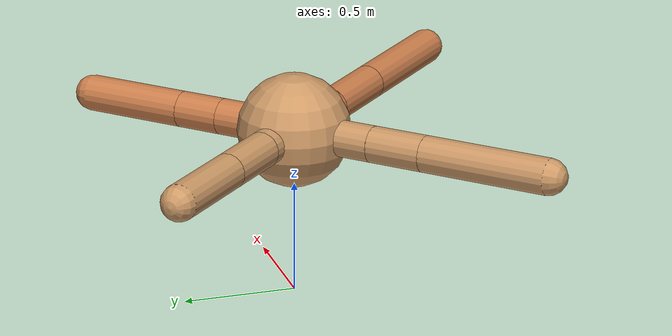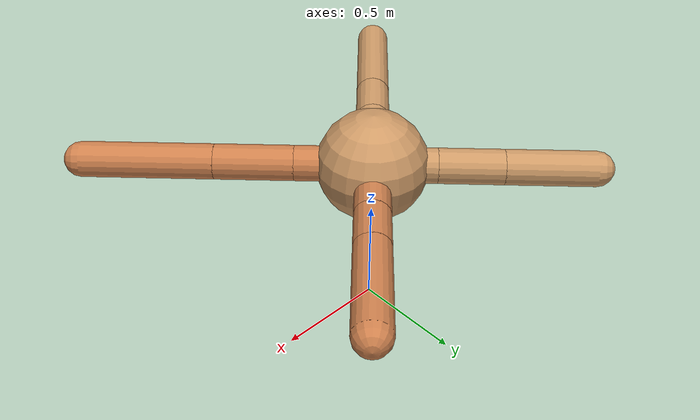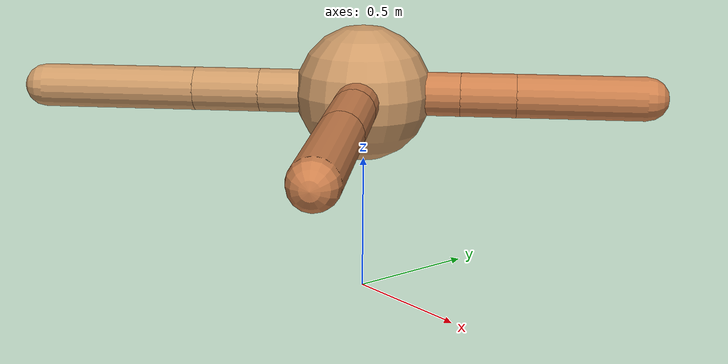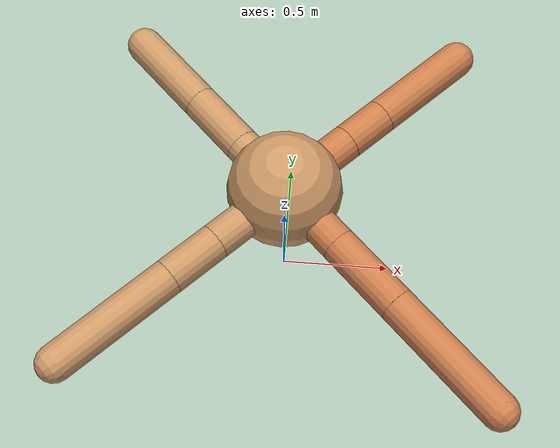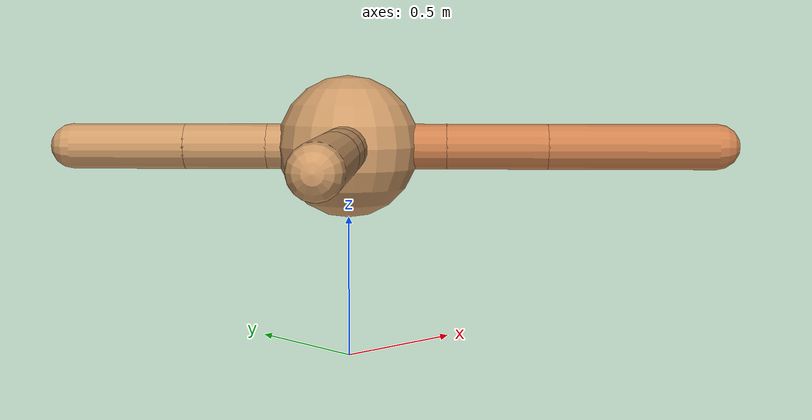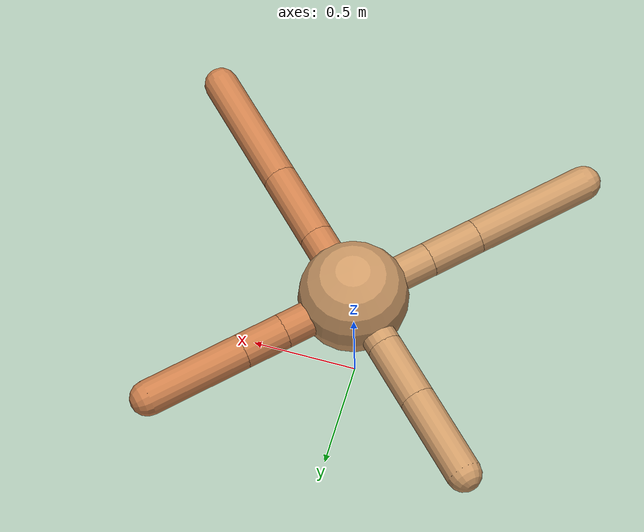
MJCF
<mujoco model="ant">
  <compiler angle="degree" coordinate="local" inertiafromgeom="true" />
  <option integrator="RK4" timestep="0.01" />
  <custom>
    <numeric data="0.0 0.0 0.55 1.0 0.0 0.0 0.0 0.0 1.0 0.0 -1.0 0.0 -1.0 0.0 1.0" name="init_qpos" />
  </custom>
  <default>
    <joint armature="1" damping="1" limited="true" />
    <geom conaffinity="0" condim="3" density="5.0" friction="1.5 0.1 0.1" margin="0.01" rgba="0.8 0.6 0.4 1" />
  </default>
  <worldbody>
    <body name="torso" pos="0 0 0.75">
      <geom name="torso_geom" pos="0 0 0" size="0.25" type="sphere" />

      <body name="front_left_leg" pos="0 0 0">
        <geom fromto="0.0 0.0 0.0 0.2521926499779422 0.2521926499779422 0.0" name="aux_1_geom" size="0.08" type="capsule" rgba=".8 .5 .3 1" />
        <body name="aux_1" pos="0.2521926499779422 0.2521926499779422 0.0">
          <joint axis="0 0 1" name="hip_1" pos="0.0 0.0 0.0" range="-40 40" type="hinge" />
          <geom fromto="0.0 0.0 0.0 0.14292089938491467 0.14292089938491467 0.0" name="left_leg_geom" size="0.08" type="capsule" rgba=".8 .5 .3 1" />
          <body pos="0.14292089938491467 0.14292089938491467 0.0" name="front_left_foot">
            <joint axis="-1 1 0" name="ankle_1" pos="0.0 0.0 0.0" range="30 100" type="hinge" />
            <geom fromto="0.0 0.0 0.0 0.32846896412589377 0.32846896412589377 0.0" name="left_ankle_geom" size="0.08" type="capsule" rgba=".8 .5 .3 1" />
          </body>
        </body>
      </body>
      <body name="front_right_leg" pos="0 0 0">
        <geom fromto="0.0 0.0 0.0 -0.2014919906955817 0.2014919906955817 0.0" name="aux_2_geom" size="0.08" type="capsule" />
        <body name="aux_2" pos="-0.2014919906955817 0.2014919906955817 0.0">
          <joint axis="0 0 1" name="hip_2" pos="0.0 0.0 0.0" range="-40 40" type="hinge" />
          <geom fromto="0.0 0.0 0.0 -0.20567711622278462 0.20567711622278462 0.0" name="right_leg_geom" size="0.08" type="capsule" />
          <body pos="-0.20567711622278462 0.20567711622278462 0.0" name="front_right_foot">
            <joint axis="1 1 0" name="ankle_2" pos="0.0 0.0 0.0" range="-100 -30" type="hinge" />
            <geom fromto="0.0 0.0 0.0 -0.2833589039404804 0.2833589039404804 0.0" name="right_ankle_geom" size="0.08" type="capsule" />
          </body>
        </body>
      </body>
      <body name="left_back_leg" pos="0 0 0">
        <geom fromto="0.0 0.0 0.0 -0.27092499571509965 -0.27092499571509965 0.0" name="aux_3_geom" size="0.08" type="capsule" />
        <body name="aux_3" pos="-0.27092499571509965 -0.27092499571509965 0.0">
          <joint axis="0 0 1" name="hip_3" pos="0.0 0.0 0.0" range="-40 40" type="hinge" />
          <geom fromto="0.0 0.0 0.0 -0.17401195587313137 -0.17401195587313137 0.0" name="back_leg_geom" size="0.08" type="capsule" />
          <body pos="-0.17401195587313137 -0.17401195587313137 0.0" name="left_back_foot">
            <joint axis="-1 1 0" name="ankle_3" pos="0.0 0.0 0.0" range="-100 -30" type="hinge" />
            <geom fromto="0.0 0.0 0.0 -0.40722006587199405 -0.40722006587199405 0.0" name="third_ankle_geom" size="0.08" type="capsule" />
          </body>
        </body>
      </body>
      <body name="right_back_leg" pos="0 0 0">
        <geom fromto="0.0 0.0 0.0 0.24410590796048925 -0.24410590796048925 0.0" name="aux_4_geom" size="0.08" type="capsule" rgba=".8 .5 .3 1" />
        <body name="aux_4" pos="0.24410590796048925 -0.24410590796048925 0.0">
          <joint axis="0 0 1" name="hip_4" pos="0.0 0.0 0.0" range="-40 40" type="hinge" />
          <geom fromto="0.0 0.0 0.0 0.24973251113313788 -0.24973251113313788 0.0" name="rightback_leg_geom" size="0.08" type="capsule" rgba=".8 .5 .3 1" />
          <body pos="0.24973251113313788 -0.24973251113313788 0.0" name="right_back_foot">
            <joint axis="1 1 0" name="ankle_4" pos="0.0 0.0 0.0" range="30 100" type="hinge" />
            <geom fromto="0.0 0.0 0.0 0.4166544151711737 -0.4166544151711737 0.0" name="fourth_ankle_geom" size="0.08" type="capsule" rgba=".8 .5 .3 1" />
          </body>
        </body>
      </body>
    </body>
  </worldbody>
  <actuator>
    <motor ctrllimited="true" ctrlrange="-1.0 1.0" joint="hip_4" gear="150" />
    <motor ctrllimited="true" ctrlrange="-1.0 1.0" joint="ankle_4" gear="150" />
    <motor ctrllimited="true" ctrlrange="-1.0 1.0" joint="hip_1" gear="150" />
    <motor ctrllimited="true" ctrlrange="-1.0 1.0" joint="ankle_1" gear="150" />
    <motor ctrllimited="true" ctrlrange="-1.0 1.0" joint="hip_2" gear="150" />
    <motor ctrllimited="true" ctrlrange="-1.0 1.0" joint="ankle_2" gear="150" />
    <motor ctrllimited="true" ctrlrange="-1.0 1.0" joint="hip_3" gear="150" />
    <motor ctrllimited="true" ctrlrange="-1.0 1.0" joint="ankle_3" gear="150" />
  </actuator>
</mujoco>
